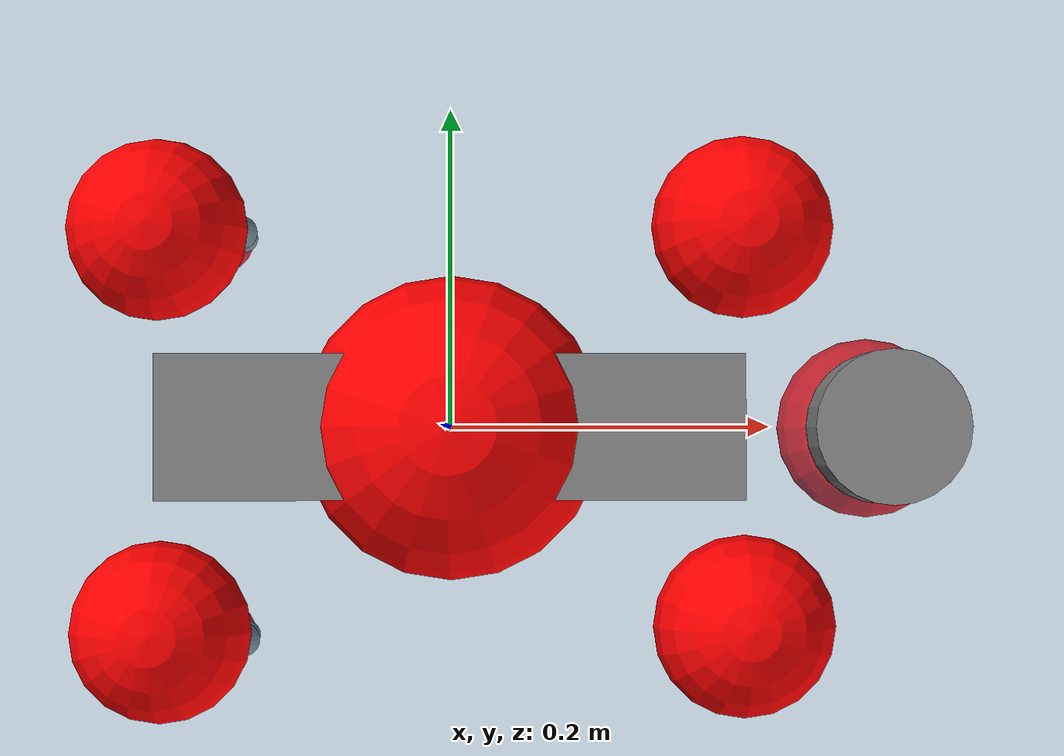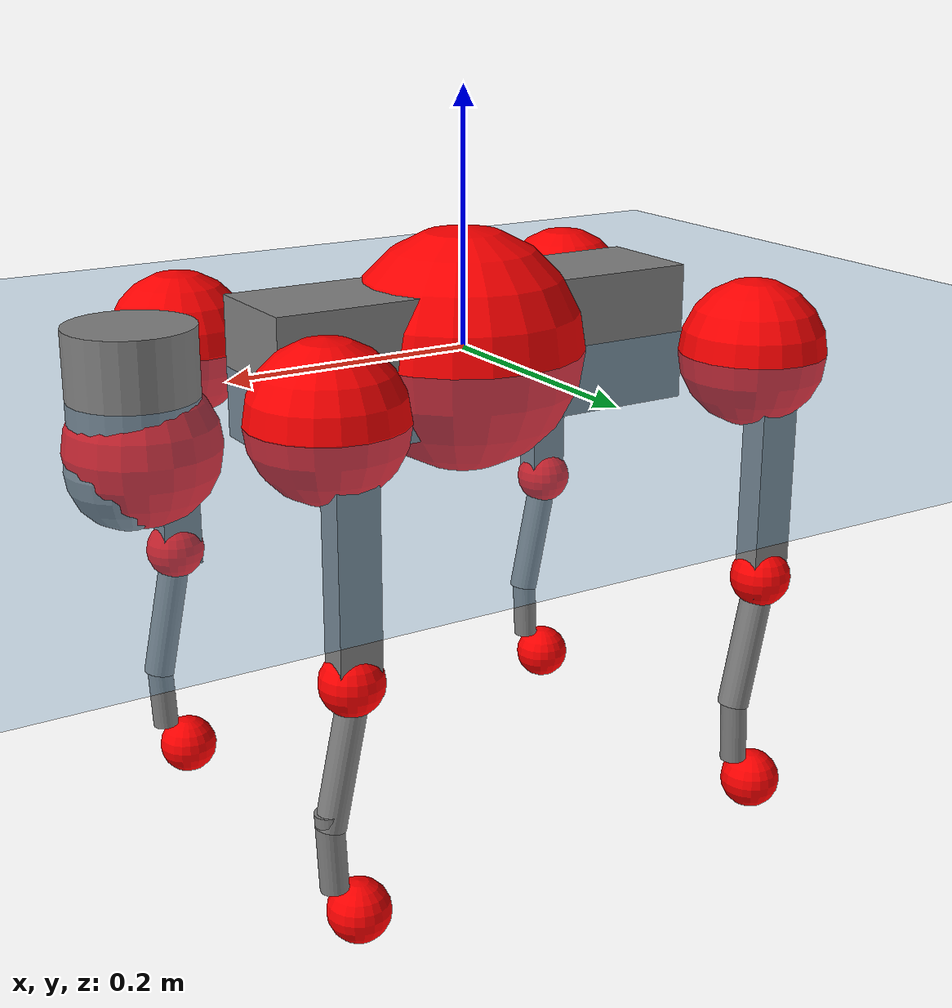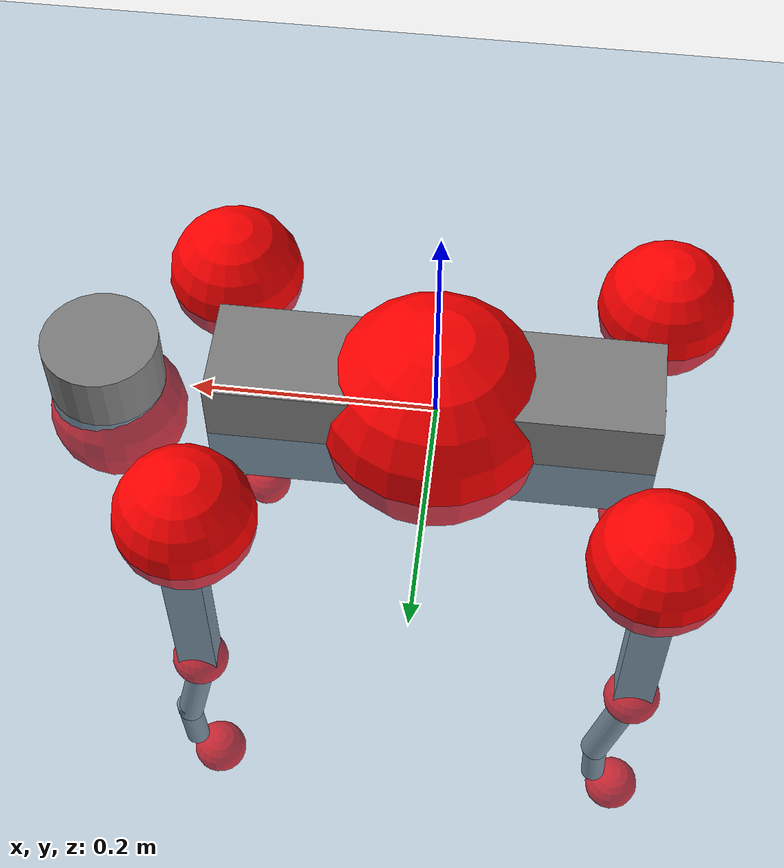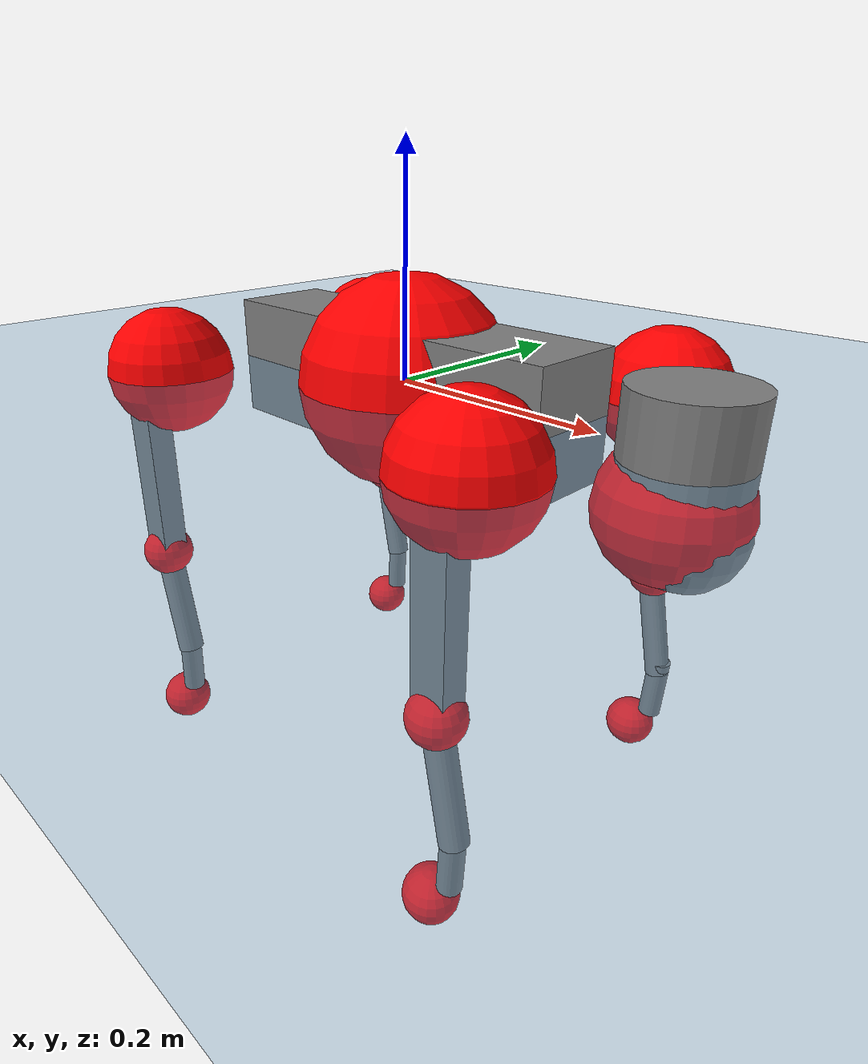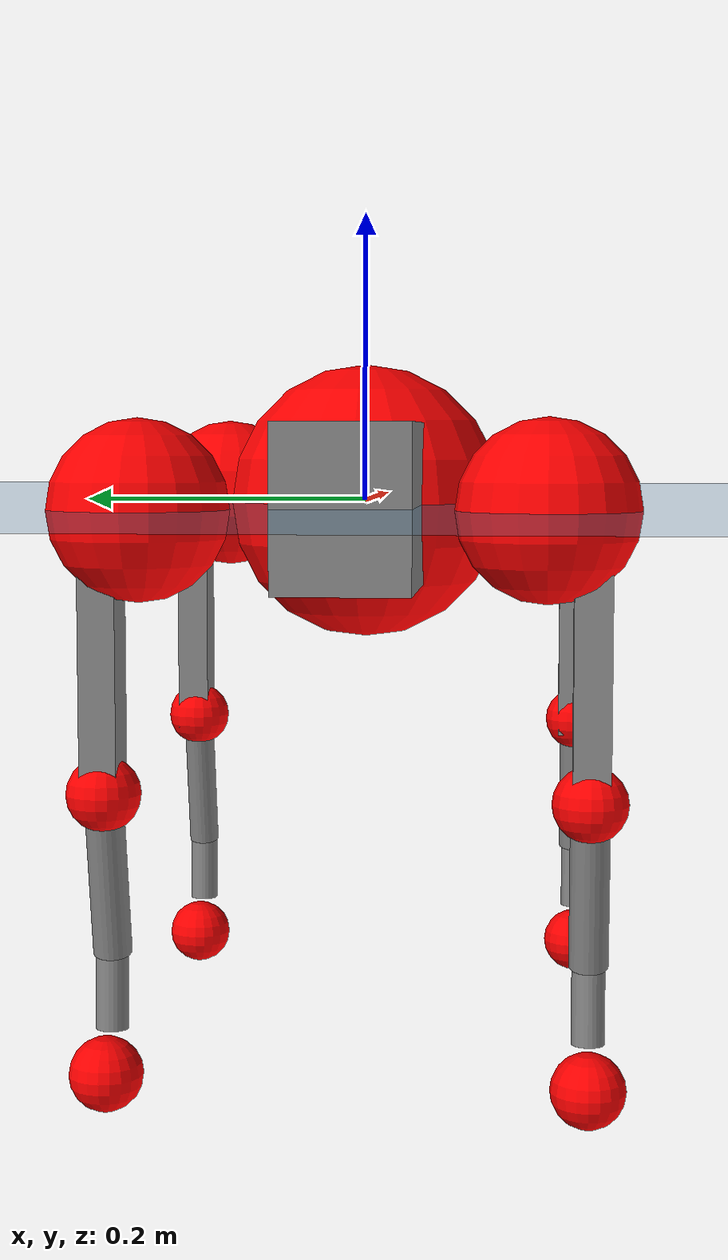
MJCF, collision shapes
<mujoco model="go2">
  <compiler angle="radian" assetdir="assets" balanceinertia="true" inertiafromgeom="false"/>

  <option timestep="0.005" density="1.2" viscosity="2e-05"/>

  <size nkey="1"/>

  <visual>
    <quality shadowsize="8192"/>
    <map shadowclip="0.5"/>
  </visual>

  <default>
    <default class="/">
      <geom contype="0" conaffinity="0" group="1" solref="-1000 -80"/>
      <site size="0.01 0.005 0.005" group="5"/>
      <general forcelimited="true" biastype="affine" gainprm="20" biasprm="0 -20 -0.5"/>
      <default class="go2">
        <joint armature="0.01" damping="0.01" frictionloss="0.2"/>
        <geom condim="1" margin="0.001"/>
        <default class="visual">
          <geom type="mesh" group="2"/>
        </default>
        <default class="collision">
          <geom group="3"/>
          <default class="foot">
            <geom size="0.022 0 0" condim="6" priority="1" friction="0.8 0.02 0.01" solimp="0.015 1 0.022"/>
          </default>
        </default>
        <default class="reward_collision_sphere">
          <geom group="5" rgba="1 0 0 1"/>
        </default>
      </default>
    </default>
  </default>

  <asset>
    <texture type="skybox" colorspace="auto" name="//unnamed_texture_0" builtin="gradient" rgb1="0.95 0.95 0.95" rgb2="0.95 0.95 0.95" width="100" height="600"/>
    <texture type="2d" colorspace="auto" name="texplane" builtin="checker" rgb1="0.345 0.575 0.748" rgb2="0.345 0.575 0.748" markrgb="1 1 1" width="512" height="512"/>
    <material name="MatPlane" class="/" texture="texplane" texuniform="true" texrepeat="2 2" specular="0.9"/>
    <material name="metal" class="/" rgba="0.9 0.95 0.95 1"/>
    <material name="black" class="/" rgba="0 0 0 1"/>
    <material name="white" class="/"/>
    <material name="gray" class="/" rgba="0.671705 0.692426 0.77427 1"/>
    <mesh name="base_0" class="/" file="base_0.obj"/>
    <mesh name="base_1" class="/" file="base_1.obj"/>
    <mesh name="base_2" class="/" file="base_2.obj"/>
    <mesh name="base_3" class="/" file="base_3.obj"/>
    <mesh name="base_4" class="/" file="base_4.obj"/>
    <mesh name="hip_0" class="/" file="hip_0.obj"/>
    <mesh name="hip_1" class="/" file="hip_1.obj"/>
    <mesh name="thigh_0" class="/" file="thigh_0.obj"/>
    <mesh name="thigh_1" class="/" file="thigh_1.obj"/>
    <mesh name="thigh_mirror_0" class="/" file="thigh_mirror_0.obj"/>
    <mesh name="thigh_mirror_1" class="/" file="thigh_mirror_1.obj"/>
    <mesh name="calf_0" class="/" file="calf_0.obj"/>
    <mesh name="calf_1" class="/" file="calf_1.obj"/>
    <mesh name="calf_mirror_0" class="/" file="calf_mirror_0.obj"/>
    <mesh name="calf_mirror_1" class="/" file="calf_mirror_1.obj"/>
    <mesh name="foot" class="/" file="foot.obj"/>
  </asset>

  <worldbody>
    <geom name="floor" class="/" size="100 100 0.125" type="plane" group="0" material="MatPlane"/>
    <light name="toplight_shadow" class="/" pos="0 0 5" dir="0.0990148 0.0990148 -0.990148" type="directional" ambient="0.04 0.04 0.04" diffuse="0.55 0.55 0.55" specular="0.12 0.12 0.12"/>
    <light name="toplight_fill" class="/" pos="0 0 5" dir="0.0990148 0.0990148 -0.990148" type="directional" castshadow="false" ambient="0.04 0.04 0.04" diffuse="0.3 0.3 0.3" specular="0.08 0.08 0.08"/>
    <body name="trunk" childclass="go2" pos="0.000507242 -0.000216653 -0.000840379" quat="1 -0.000111545 -0.000119067 -5.92746e-05">
      <inertial pos="0.018466 -0.0020485 -0.00531887" quat="-0.00149915 0.716562 0.000568419 0.697522" mass="6.02565" diaginertia="0.084135 0.145205 0.0107783"/>
      <joint name="//unnamed_joint_0" type="free" armature="0" damping="0" frictionloss="0"/>
      <geom name="//unnamed_geom_1" class="visual" material="black" mesh="base_0"/>
      <geom name="//unnamed_geom_2" class="visual" material="black" mesh="base_1"/>
      <geom name="//unnamed_geom_3" class="visual" material="black" mesh="base_2"/>
      <geom name="//unnamed_geom_4" class="visual" material="white" mesh="base_3"/>
      <geom name="//unnamed_geom_5" class="visual" material="gray" mesh="base_4"/>
      <geom name="trunk_1" class="collision" size="0.180127 0.0447684 0.0545839" type="box"/>
      <geom name="trunk_2" class="collision" size="0.0478806 0.0430926" pos="0.270843 0 0.0084584" type="cylinder"/>
      <geom name="trunk_3" class="collision" size="0.0450078" pos="0.278445 0 -0.0507504"/>
      <geom name="//unnamed_geom_9" class="reward_collision_sphere" size="0.0957613"/>
      <geom name="//unnamed_geom_10" class="reward_collision_sphere" size="0.0574568" pos="0.266091 0 -0.0380628"/>
      <site name="imu" pos="-0.0367829 -0.000323007 0.0458218" size="0.00957613"/>
      <camera name="track" pos="0 -2.15334 0" quat="0.707107 0.707107 0 0" mode="trackcom"/>
      <camera name="ego_camera" pos="0.296502 0 0.0380628" quat="-0.5 -0.5 0.5 0.5"/>
      <body name="FL_hip" pos="0.183292 0.0512431 0.000687555" quat="1 -9.06896e-05 0.000151241 0.000182355">
        <inertial pos="-0.00297243 0.00274124 -0.000811196" quat="0.496377 0.499624 0.505842 0.498106" mass="0.577088" diaginertia="0.000663271 0.000862605 0.000204331"/>
        <joint name="FL_hip_joint" pos="0 0 0" axis="0.999934 -0.00707691 0.00904369" stiffness="0.00484817" range="-1.06044 1.04755" armature="0.0107105" damping="0.00178891" frictionloss="0.195136"/>
        <geom name="//unnamed_geom_11" class="visual" material="metal" mesh="hip_0"/>
        <geom name="//unnamed_geom_12" class="visual" material="gray" mesh="hip_1"/>
        <geom name="//unnamed_geom_13" class="collision" size="0.0440502 0.0191523" pos="0 0.0861338 0" quat="0.707107 0.707107 0 0" type="cylinder"/>
        <geom name="//unnamed_geom_14" class="reward_collision_sphere" size="0.0574568" pos="0 0.0753671 0"/>
        <body name="FL_thigh" pos="-0.000694756 0.104237 0.00225001" quat="1 0.000582366 0.000254667 -0.000190359">
          <inertial pos="-0.00455516 -0.024011 -0.0254718" quat="0.830843 0.0818068 -0.0165961 0.550211" mass="1.02203" diaginertia="0.00451648 0.00851684 0.00038464"/>
          <joint name="FL_thigh_joint" pos="0 0 0" axis="0.000919518 0.999997 0.00230308" range="-1.55165 3.47139" armature="0.00946157" damping="0.0153626" frictionloss="0.172243"/>
          <geom name="//unnamed_geom_15" class="visual" material="metal" mesh="thigh_0"/>
          <geom name="//unnamed_geom_16" class="visual" material="gray" mesh="thigh_1"/>
          <geom name="//unnamed_geom_17" class="collision" size="0.101986 0.0117308 0.0162794" pos="0 0 -0.090082" quat="0.707107 0 0.707107 0" type="box"/>
          <body name="FL_calf" pos="0.000904216 -0.00212778 -0.182919" quat="1 -8.69596e-05 -0.000756373 -4.05838e-06">
            <inertial pos="0.00695678 -0.000565562 -0.118042" quat="0.708739 0.000383965 -0.00804766 0.705424" mass="0.211456" diaginertia="0.00115837 0.00210788 2.32491e-05"/>
            <joint name="FL_calf_joint" pos="0 0 0" axis="0.00542669 0.999974 0.00480703" stiffness="0.00103557" range="-2.73733 -0.855057" armature="0.00941766" damping="0" frictionloss="0.195799"/>
            <geom name="//unnamed_geom_18" class="visual" material="gray" mesh="calf_0"/>
            <geom name="//unnamed_geom_19" class="visual" material="black" mesh="calf_1"/>
            <geom name="FL_calf0" class="collision" size="0.0114914 0.0574568" pos="0.00760261 0 -0.0507504" quat="0.994493 0 -0.104807 0" type="cylinder"/>
            <geom name="//unnamed_geom_21" class="collision" size="0.0105337 0.0311224" pos="0.0190065 0 -0.125184" quat="0.999688 0 0.0249974 0" type="cylinder"/>
            <geom name="//unnamed_geom_22" class="visual" pos="0 0 -0.180164" quat="1 0 0 0" material="black" mesh="foot"/>
            <geom name="FL_foot" class="foot" size="0.0181569" pos="-0.00190065 0 -0.180164"/>
            <geom name="//unnamed_geom_24" class="reward_collision_sphere" size="0.0239403"/>
            <geom name="//unnamed_geom_25" class="reward_collision_sphere" size="0.0239403" pos="-0.00190065 0 -0.180164"/>
            <site name="FL_foot" class="foot" pos="-0.00190065 0 -0.180164" size="0.00957613"/>
          </body>
        </body>
      </body>
      <body name="FR_hip" pos="0.183901 -0.0494946 0.00109686" quat="1 -9.72235e-05 0.000114112 -5.62636e-05">
        <inertial pos="-0.00301909 -0.00248733 0.000227683" quat="0.4978 0.506552 0.499426 0.496158" mass="0.604625" diaginertia="0.000694349 0.000866114 0.000208444"/>
        <joint name="FR_hip_joint" pos="0 0 0" axis="0.999985 -0.00194739 0.00514008" stiffness="0.00379641" range="-1.09203 1.0505" armature="0.00864377" damping="0.0199175" frictionloss="0.172037"/>
        <geom name="//unnamed_geom_26" class="visual" pos="0 2.01092e-09 8.62523e-08" quat="4.63268e-05 1 0 0" material="metal" mesh="hip_0"/>
        <geom name="//unnamed_geom_27" class="visual" pos="0 3.25994e-09 -2.13335e-07" quat="4.63268e-05 1 0 0" material="gray" mesh="hip_1"/>
        <geom name="//unnamed_geom_28" class="collision" size="0.0440502 0.0191523" pos="0 -0.0861338 0" quat="0.707107 0.707107 0 0" type="cylinder"/>
        <geom name="//unnamed_geom_29" class="reward_collision_sphere" size="0.0574568" pos="0 -0.0753671 0"/>
        <body name="FR_thigh" pos="0.00110592 -0.100374 -0.000302299" quat="1 -5.58457e-05 9.03492e-06 -2.43772e-05">
          <inertial pos="-0.003263 0.0242121 -0.0280494" quat="0.555835 -0.0123087 0.0823815 0.827109" mass="0.966553" diaginertia="0.0045646 0.00835966 0.00037157"/>
          <joint name="FR_thigh_joint" pos="0 0 0" axis="-0.00354931 -0.99996 0.00826326" stiffness="0.00237808" range="-3.4419 1.58376" armature="0.00976607" damping="0.000413183" frictionloss="0.216256"/>
          <geom name="//unnamed_geom_30" class="visual" material="metal" mesh="thigh_mirror_0"/>
          <geom name="//unnamed_geom_31" class="visual" material="gray" mesh="thigh_mirror_1"/>
          <geom name="//unnamed_geom_32" class="collision" size="0.101986 0.0117308 0.0162794" pos="0 0 -0.090082" quat="0.707107 0 0.707107 0" type="box"/>
          <body name="FR_calf" pos="0.00189844 -0.00242804 -0.180841" quat="1 -0.000220733 4.33218e-06 -7.97345e-05">
            <inertial pos="0.00618151 0.000299947 -0.117615" quat="0.703508 -0.00423702 0.00179612 0.710672" mass="0.212065" diaginertia="0.00111903 0.00207616 2.31377e-05"/>
            <joint name="FR_calf_joint" pos="0 0 0" axis="-0.00041974 -0.999998 0.00190321" stiffness="0.000388586" range="0.833669 2.73538" armature="0.0100782" damping="0.0097666" frictionloss="0.168625"/>
            <geom name="//unnamed_geom_33" class="visual" material="gray" mesh="calf_mirror_0"/>
            <geom name="//unnamed_geom_34" class="visual" material="black" mesh="calf_mirror_1"/>
            <geom name="FR_calf0" class="collision" size="0.012449 0.0574568" pos="0.00950326 0 -0.0507504" quat="0.995004 0 -0.0998334 0" type="cylinder"/>
            <geom name="//unnamed_geom_36" class="collision" size="0.0105337 0.0311224" pos="0.0190065 0 -0.125184" quat="0.999688 0 0.0249974 0" type="cylinder"/>
            <geom name="//unnamed_geom_37" class="visual" pos="0 0 -0.180164" quat="1 0 0 0" material="black" mesh="foot"/>
            <geom name="FR_foot" class="foot" size="0.0202011" pos="-0.00190065 0 -0.180164"/>
            <geom name="//unnamed_geom_39" class="reward_collision_sphere" size="0.0239403"/>
            <geom name="//unnamed_geom_40" class="reward_collision_sphere" size="0.0239403" pos="-0.00190065 0 -0.180164"/>
            <site name="FR_foot" class="foot" pos="-0.00190065 0 -0.180164" size="0.00957613"/>
          </body>
        </body>
      </body>
      <body name="RL_hip" pos="-0.186242 0.0497545 -0.000514503" quat="1 -1.36314e-06 4.59073e-05 -0.000131696">
        <inertial pos="0.00436648 0.00467815 0.000810173" quat="0.505881 0.497942 0.496077 0.500046" mass="0.590595" diaginertia="0.000678221 0.000868277 0.000197997"/>
        <joint name="RL_hip_joint" pos="0 0 0" axis="-0.999882 0.0108051 0.0109256" stiffness="0.00500675" range="-1.06912 0.99477" armature="0.00847466" damping="0.00515289" frictionloss="0.188534"/>
        <geom name="//unnamed_geom_41" class="visual" pos="-9.10238e-10 0 -1.78428e-07" quat="4.63268e-05 0 1 0" material="metal" mesh="hip_0"/>
        <geom name="//unnamed_geom_42" class="visual" pos="-1.4756e-09 0 -1.5824e-07" quat="4.63268e-05 0 1 0" material="gray" mesh="hip_1"/>
        <geom name="//unnamed_geom_43" class="collision" size="0.0440502 0.0191523" pos="0 0.0861338 0" quat="0.707107 0.707107 0 0" type="cylinder"/>
        <geom name="//unnamed_geom_44" class="reward_collision_sphere" size="0.0574568" pos="0 0.0753671 0"/>
        <body name="RL_thigh" pos="-0.000435926 0.0995853 0.000551263" quat="1 -2.11812e-06 -5.56713e-05 -2.49345e-05">
          <inertial pos="-0.0035594 -0.0221387 -0.02778" quat="0.83023 0.0865925 -0.0213537 0.550241" mass="1.01067" diaginertia="0.00462363 0.00843145 0.000375767"/>
          <joint name="RL_thigh_joint" pos="0 0 0" axis="0.00107512 0.999957 -0.00921828" stiffness="0.00517495" range="-0.526596 4.53499" armature="0.00974964" damping="0.00482182" frictionloss="0.181961"/>
          <geom name="//unnamed_geom_45" class="visual" material="metal" mesh="thigh_0"/>
          <geom name="//unnamed_geom_46" class="visual" material="gray" mesh="thigh_1"/>
          <geom name="//unnamed_geom_47" class="collision" size="0.101986 0.0117308 0.0162794" pos="0 0 -0.090082" quat="0.707107 0 0.707107 0" type="box"/>
          <body name="RL_calf" pos="-9.38012e-05 -0.000334271 -0.17934" quat="1 -0.000538214 -2.79278e-05 -3.44563e-05">
            <inertial pos="0.00593958 -0.00071256 -0.120005" quat="0.706672 0.000789539 -0.0160326 0.707359" mass="0.211607" diaginertia="0.0011599 0.00211862 2.22295e-05"/>
            <joint name="RL_calf_joint" pos="0 0 0" axis="0.000452139 0.999945 -0.0104487" stiffness="0.00123996" range="-2.72648 -0.835977" armature="0.0089904" damping="0.00377548" frictionloss="0.197283"/>
            <geom name="//unnamed_geom_48" class="visual" material="gray" mesh="calf_0"/>
            <geom name="//unnamed_geom_49" class="visual" material="black" mesh="calf_1"/>
            <geom name="RL_calf0" class="collision" size="0.012449 0.0574568" pos="0.00950326 0 -0.0507504" quat="0.995004 0 -0.0998334 0" type="cylinder"/>
            <geom name="//unnamed_geom_51" class="collision" size="0.0105337 0.0311224" pos="0.0190065 0 -0.125184" quat="0.999688 0 0.0249974 0" type="cylinder"/>
            <geom name="//unnamed_geom_52" class="visual" pos="0 0 -0.180164" quat="1 0 0 0" material="black" mesh="foot"/>
            <geom name="RL_foot" class="foot" size="0.0188666" pos="-0.00190065 0 -0.180164"/>
            <geom name="//unnamed_geom_54" class="reward_collision_sphere" size="0.0239403"/>
            <geom name="//unnamed_geom_55" class="reward_collision_sphere" size="0.0239403" pos="-0.00190065 0 -0.180164"/>
            <site name="RL_foot" class="foot" pos="-0.00190065 0 -0.180164" size="0.00957613"/>
          </body>
        </body>
      </body>
      <body name="RR_hip" pos="-0.183169 -0.0531538 -0.000259793" quat="1 -0.000389288 4.02321e-05 -0.000616243">
        <inertial pos="0.00282191 -0.00178087 0.00183456" quat="0.498086 0.493649 0.499615 0.508532" mass="0.599105" diaginertia="0.000686627 0.000865554 0.000202544"/>
        <joint name="RR_hip_joint" pos="0 0 0" axis="-1 6.56767e-05 0.000853582" range="-1.08048 1.09625" armature="0.00940959" damping="0.000273303" frictionloss="0.191764"/>
        <geom name="//unnamed_geom_56" class="visual" pos="9.14612e-10 2.01092e-09 -2.6468e-07" quat="2.14617e-09 4.63268e-05 4.63268e-05 -1" material="metal" mesh="hip_0"/>
        <geom name="//unnamed_geom_57" class="visual" pos="1.46479e-09 3.25994e-09 5.50951e-08" quat="2.14617e-09 4.63268e-05 4.63268e-05 -1" material="gray" mesh="hip_1"/>
        <geom name="//unnamed_geom_58" class="collision" size="0.0440502 0.0191523" pos="0 -0.0861338 0" quat="0.707107 0.707107 0 0" type="cylinder"/>
        <geom name="//unnamed_geom_59" class="reward_collision_sphere" size="0.0574568" pos="0 -0.0753671 0"/>
        <body name="RR_thigh" pos="0.000509288 -0.10308 0.00125411" quat="1 -0.000107466 -8.20298e-05 0.000244153">
          <inertial pos="-0.00252358 0.0247451 -0.028118" quat="0.551973 -0.0198097 0.0851068 0.829271" mass="0.949651" diaginertia="0.00436241 0.00820603 0.000365153"/>
          <joint name="RR_thigh_joint" pos="0 0 0" axis="-0.0151254 -0.999886 0.000329705" stiffness="0.00017056" range="-4.53145 0.527803" armature="0.00999488" damping="0.0212648" frictionloss="0.189825"/>
          <geom name="//unnamed_geom_60" class="visual" material="metal" mesh="thigh_mirror_0"/>
          <geom name="//unnamed_geom_61" class="visual" material="gray" mesh="thigh_mirror_1"/>
          <geom name="//unnamed_geom_62" class="collision" size="0.101986 0.0117308 0.0162794" pos="0 0 -0.090082" quat="0.707107 0 0.707107 0" type="box"/>
          <body name="RR_calf" pos="-0.00159242 0.000544156 -0.18211" quat="1 -0.000176217 -0.000142521 -0.000169973">
            <inertial pos="0.00668736 0.000711613 -0.119226" quat="0.707446 -0.00745266 0.00766823 0.706687" mass="0.214157" diaginertia="0.00116352 0.00217649 2.32524e-05"/>
            <joint name="RR_calf_joint" pos="0 0 0" axis="-0.000448048 -0.999987 0.00509375" stiffness="0.00411315" range="0.841019 2.7461" armature="0.00842409" damping="0.00401181" frictionloss="0.190801"/>
            <geom name="//unnamed_geom_63" class="visual" material="gray" mesh="calf_mirror_0"/>
            <geom name="//unnamed_geom_64" class="visual" material="black" mesh="calf_mirror_1"/>
            <geom name="RR_calf0" class="collision" size="0.012449 0.0574568" pos="0.00950326 0 -0.0507504" quat="0.995004 0 -0.0998334 0" type="cylinder"/>
            <geom name="//unnamed_geom_66" class="collision" size="0.0105337 0.0311224" pos="0.0190065 0 -0.125184" quat="0.999688 0 0.0249974 0" type="cylinder"/>
            <geom name="//unnamed_geom_67" class="visual" pos="0 0 -0.180164" quat="1 0 0 0" material="black" mesh="foot"/>
            <geom name="RR_foot" class="foot" size="0.0213656" pos="-0.00190065 0 -0.180164"/>
            <geom name="//unnamed_geom_69" class="reward_collision_sphere" size="0.0239403"/>
            <geom name="//unnamed_geom_70" class="reward_collision_sphere" size="0.0239403" pos="-0.00190065 0 -0.180164"/>
            <site name="RR_foot" class="foot" pos="-0.00190065 0 -0.180164" size="0.00957613"/>
          </body>
        </body>
      </body>
    </body>
  </worldbody>

  <contact>
    <pair class="/" geom1="floor" geom2="FL_foot" name="//unnamed_contact_0"/>
    <pair class="/" geom1="floor" geom2="FR_foot" name="//unnamed_contact_1"/>
    <pair class="/" geom1="floor" geom2="RL_foot" name="//unnamed_contact_2"/>
    <pair class="/" geom1="floor" geom2="RR_foot" name="//unnamed_contact_3"/>
  </contact>

  <actuator>
    <general name="FL_hip" class="/" joint="FL_hip_joint" forcerange="-22.8237 22.8237" gainprm="18.869" biasprm="0 -18.869 -0.492319"/>
    <general name="FL_thigh" class="/" joint="FL_thigh_joint" forcerange="-22.6479 22.6479" gainprm="18.869" biasprm="0 -18.869 -0.492319"/>
    <general name="FL_calf" class="/" joint="FL_calf_joint" forcerange="-44.7534 44.7534" gainprm="18.869" biasprm="0 -18.869 -0.492319"/>
    <general name="FR_hip" class="/" joint="FR_hip_joint" forcerange="-22.3745 22.3745" gainprm="18.869" biasprm="0 -18.869 -0.492319"/>
    <general name="FR_thigh" class="/" joint="FR_thigh_joint" forcerange="-22.1623 22.1623" gainprm="18.869" biasprm="0 -18.869 -0.492319"/>
    <general name="FR_calf" class="/" joint="FR_calf_joint" forcerange="-40.0945 40.0945" gainprm="18.869" biasprm="0 -18.869 -0.492319"/>
    <general name="RL_hip" class="/" joint="RL_hip_joint" forcerange="-22.7 22.7" gainprm="18.869" biasprm="0 -18.869 -0.492319"/>
    <general name="RL_thigh" class="/" joint="RL_thigh_joint" forcerange="-21.0134 21.0134" gainprm="18.869" biasprm="0 -18.869 -0.492319"/>
    <general name="RL_calf" class="/" joint="RL_calf_joint" forcerange="-44.7487 44.7487" gainprm="18.869" biasprm="0 -18.869 -0.492319"/>
    <general name="RR_hip" class="/" joint="RR_hip_joint" forcerange="-23.5644 23.5644" gainprm="18.869" biasprm="0 -18.869 -0.492319"/>
    <general name="RR_thigh" class="/" joint="RR_thigh_joint" forcerange="-20.6421 20.6421" gainprm="18.869" biasprm="0 -18.869 -0.492319"/>
    <general name="RR_calf" class="/" joint="RR_calf_joint" forcerange="-46.691 46.691" gainprm="18.869" biasprm="0 -18.869 -0.492319"/>
  </actuator>

  <sensor>
    <gyro site="imu" name="imu_angular_velocity"/>
    <velocimeter site="imu" name="imu_linear_velocity"/>
    <framelinvel objtype="site" objname="FL_foot" name="FL_foot_global_linear_velocity"/>
    <framelinvel objtype="site" objname="FR_foot" name="FR_foot_global_linear_velocity"/>
    <framelinvel objtype="site" objname="RL_foot" name="RL_foot_global_linear_velocity"/>
    <framelinvel objtype="site" objname="RR_foot" name="RR_foot_global_linear_velocity"/>
  </sensor>

  <keyframe>
    <key name="home" qpos="0 0 0.325 1 0 0 0 0.1 0.8 -1.5 -0.1 -0.8 1.5 -0.1 0.8 -1.5 0.1 -0.8 1.5"/>
  </keyframe>
</mujoco>
